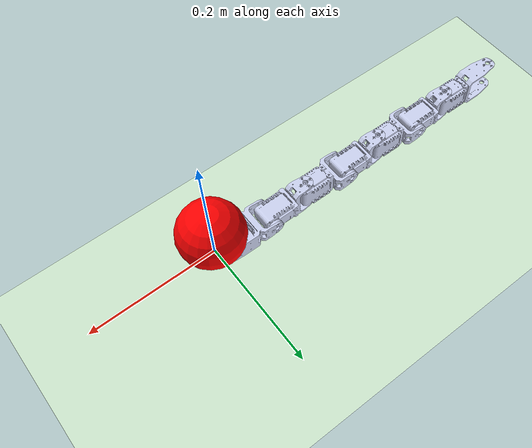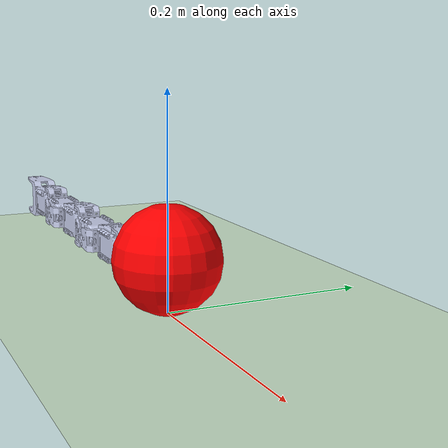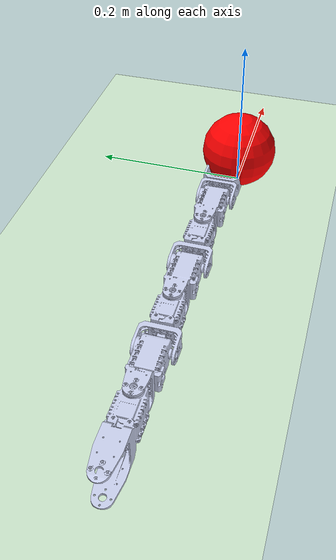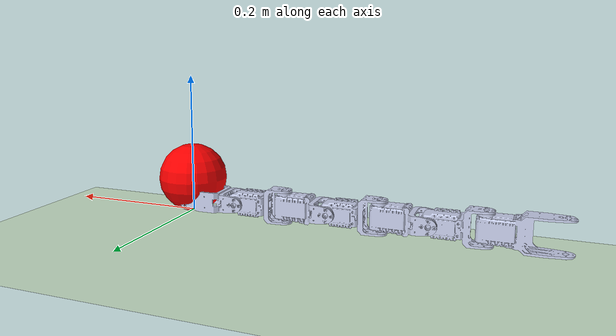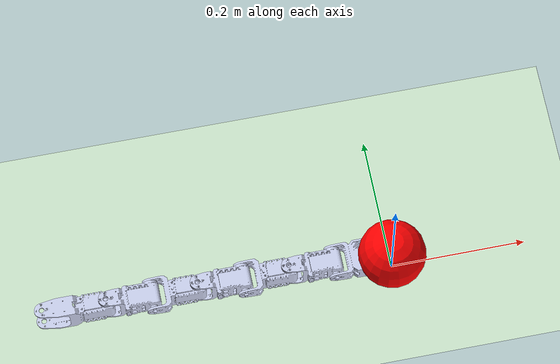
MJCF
<mujoco model="Snake_Env">
    <compiler angle="degree" coordinate="local" inertiafromgeom="true"/>

    <!-- changed timestep from 0.01 to 0.05 (0.0125*4?)   Simulation time step in seconds. 50ms = 0.05s-->

    <!--  TODO 对于 M2-Snake-Head2Tail.xml 模型，以下参数能使蛇稳定向前移动  -->
    <option integrator="Euler" timestep="0.01">
        <flag energy="enable" clampctrl="enable"/>
    </option>
    <size nconmax="1000"/>

    <default>
<!--          The kp in the defult>>position field is defined for actuator>>Position -->

        <!-- TODO 对于 M2-Snake-Head2Tail.xml 模型，sim.data.qpos[:]方式使用如下参数   -->

        <!-- TODO 对于 M2-Snake-Head2Tail.xml 模型，sim.data.ctrl[:]方式使用如下参数  -->
        <geom conaffinity="0" condim="3" friction="0.5 0.05 0.001" margin="0.01" density="600" />
        <joint armature='0.001' damping="0.01" frictionloss="0.001" />
        <position ctrllimited="true" ctrlrange="-1.5 1.5" forcelimited="true" forcerange="-20.0 20.0" kp="12" gear="1"/>
    </default>

    <asset>
        <mesh name="Head" file="Head.STL" />
        <mesh name="Module_0_fromHead" file="Module_0_fromHead.STL" />
        <mesh name="Module_1_fromHead" file="Module_1_fromHead.STL" />
        <mesh name="Module_2_fromHead" file="Module_2_fromHead.STL" />
        <mesh name="Module_3_fromHead" file="Module_3_fromHead.STL" />
        <mesh name="Module_4_fromHead" file="Module_4_fromHead.STL" />
        <mesh name="Module_5_fromHead" file="Module_5_fromHead.STL" />

        <!-- Textures for floor and Target ball-->
        <texture builtin="gradient" height="100" rgb1="1 1 1" rgb2="0 0 0" type="skybox" width="100"/>
        <texture builtin="flat" height="1278" mark="cross" markrgb="1 1 1" name="texgeom" random="0.01"
                 rgb1="0.8 0.6 0.4" rgb2="0.8 0.6 0.4" type="cube" width="127"/>
        <texture builtin="checker" height="100" name="texplane" rgb1="0 0 0" rgb2="0.8 0.8 0.8" type="2d" width="100"/>

        <material name="MatPlane" reflectance="0.5" shininess="1" specular="1" texrepeat="80 80" texture="texplane"/>
        <material name="geom" texture="texgeom" texuniform="true"/>
        <material name="MatTarget" rgba="1 0 0 1" reflectance="0.05" shininess="0.1" specular="0.1"/>
    </asset>

    <visual>
        <map znear="0.0625"  />
        <quality shadowsize="4096"/>
    </visual>

    <worldbody>
        <light cutoff="100" diffuse="1 1 1" dir="-0 0 -1.3" directional="true" exponent="1" pos="0 0 1.3"
               specular=".1 .1 .1"/>
        <geom name="floor" size="80 80 10" material="MatPlane" conaffinity="1" condim="3" pos="0 0 -0.025" rgba="0.8 0.9 0.8 0.71" type="plane"/>

        <body name="target_ball" pos="0 0 .05">
            <joint axis="1 0 0" name="target_slider_x" type="slide"/>
            <joint axis="0 1 0" name="target_slider_y" type="slide"/>
            <geom name="target_ball_geom" type="sphere" pos="0 0 0" size="0.05" material="MatTarget"/>
            <camera name="track_ball" mode="trackcom" pos="0 0 6" euler="30 0 0"/>
            <camera name="track_ball2" mode="targetbodycom" pos="0 0 1" zaxis="0 0 90" />
        </body>

        <!-- TODO 整个蛇向右，原点在Module_1_fromHead的位置，这样设计的考虑是什么？？  -->
        <body name="Snake_Env" pos="0 0 0">
            <!-- Define camera and site [Don't know why we need them]-->
            <camera name="cam_Head" pos="0 0 .025" fovy="90" euler="90 -90 0"/>
            <site name="site_Head" pos="0 0 .025" type="box"  size=".01 .01 .01" rgba="0 0 1 0.9"/>

            <!-- Simulate the firctional sliding on the floor -->
            <joint axis="1 0 0" name="slider_x" type="slide" damping="0.01" frictionloss="0.2"/>
            <joint axis="0 1 0" name="slider_y" type="slide" damping="0.01" frictionloss="0.2"/>
            <joint axis="0 1 0" name="hinge_y" type="hinge"/>
            <joint axis="0 0 1" name="hinge_z" type="hinge"/>

            <!-- M2-Snake Body -->
            <body name="M2-Head" pos="-0.13 0 0">
                <geom type="mesh" rgba="0.79216 0.81961 0.93333 1" mesh="Head" />
                <!-- Define camera and site [Don't know why we need them]-->
                <body name="Module_0_fromHead" pos="0.0465 0 0.024">
                    <inertial pos="-0.17907 0.012862 0.00033889" quat="0.268962 0.65397 0.269933 0.653543" mass="0.34605" diaginertia="0.00569944 0.00569937 7.43933e-05" />
                    <joint name="Joint_0_fromHead" pos="0 0 0" axis="0 1 0" limited="true" range="-100 100" damping="1" frictionloss="20" />
                    <geom type="mesh" rgba="0.79216 0.81961 0.93333 1" mesh="Module_0_fromHead" />
                    <body name="Module_1_fromHead" pos="-0.0675 0.0125 0">
                        <inertial pos="-0.11157 0.00036206 0.00033889" quat="0.268962 0.65397 0.269933 0.653543" mass="0.34605" diaginertia="0.00569944 0.00569937 7.43933e-05" />
                        <joint name="Joint_1_fromHead" pos="0 0 0" axis="0 0 1" limited="true" range="-100 100" damping="1" frictionloss="20" />
                        <geom type="mesh" rgba="0.79216 0.81961 0.93333 1" mesh="Module_1_fromHead" />
                        <body name="Module_2_fromHead" pos="-0.0675 0 0">
                            <inertial pos="-0.044068 0.00036206 0.00033889" quat="0.268962 0.65397 0.269933 0.653543" mass="0.34605" diaginertia="0.00569944 0.00569937 7.43933e-05" />
                            <joint name="Joint_2_fromHead" pos="0 0 0" axis="0 1 0" limited="true" range="-100 100" damping="1" frictionloss="20" />
                            <geom type="mesh" rgba="0.79216 0.81961 0.93333 1" mesh="Module_2_fromHead" />
                            <body name="Module_3_fromHead" pos="-0.0675 0 0">
                                <inertial pos="0.023432 0.00036206 0.00033889" quat="0.268962 0.65397 0.269933 0.653543" mass="0.34605" diaginertia="0.00569944 0.00569937 7.43933e-05" />
                                <joint name="Joint_3_fromHead" pos="0 0 0" axis="0 0 1" limited="true" range="-100 100" damping="1" frictionloss="20" />
                                <geom type="mesh" rgba="0.79216 0.81961 0.93333 1" mesh="Module_3_fromHead" />
                                <body name="Module_4_fromHead" pos="-0.0675 0 0">
                                    <inertial pos="0.090932 0.00036206 0.00033889" quat="0.268962 0.65397 0.269933 0.653543" mass="0.34605" diaginertia="0.00569944 0.00569937 7.43933e-05" />
                                    <joint name="Joint_4_fromHead" pos="0 0 0" axis="0 1 0" limited="true" range="-100 100" damping="1" frictionloss="20" />
                                    <geom type="mesh" rgba="0.79216 0.81961 0.93333 1" mesh="Module_4_fromHead" />
                                    <body name="Module_5_fromHead" pos="-0.0675 0 0">
                                        <inertial pos="0.15843 0.00036206 0.00033889" quat="0.268962 0.65397 0.269933 0.653543" mass="0.34605" diaginertia="0.00569944 0.00569937 7.43933e-05" />
                                        <joint name="Joint_5_fromHead" pos="0 0 0" axis="0 0 1" limited="true" range="-100 100" damping="1" frictionloss="20" />
                                        <geom type="mesh" rgba="0.79216 0.81961 0.93333 1" mesh="Module_5_fromHead" />
                                    </body>
                                </body>
                            </body>
                        </body>
                    </body>
                </body>
            </body>
        </body>
    </worldbody>

    <actuator >
        <position name="Actuator_0_fromHead" joint="Joint_0_fromHead"/>
        <position name="Actuator_1_fromHead" joint="Joint_1_fromHead"/>
        <position name="Actuator_2_fromHead" joint="Joint_2_fromHead"/>
        <position name="Actuator_3_fromHead" joint="Joint_3_fromHead"/>
        <position name="Actuator_4_fromHead" joint="Joint_4_fromHead"/>
        <position name="Actuator_5_fromHead" joint="Joint_5_fromHead"/>

    </actuator>

    <sensor>

        <actuatorfrc name="Sensor_0_fromHead" actuator="Actuator_0_fromHead" />
        <actuatorfrc name="Sensor_1_fromHead" actuator="Actuator_1_fromHead" />
        <actuatorfrc name="Sensor_2_fromHead" actuator="Actuator_2_fromHead" />
        <actuatorfrc name="Sensor_3_fromHead" actuator="Actuator_3_fromHead" />
        <actuatorfrc name="Sensor_4_fromHead" actuator="Actuator_4_fromHead" />
        <actuatorfrc name="Sensor_5_fromHead" actuator="Actuator_5_fromHead" />

        <velocimeter name="sensor_velocimeter" site="site_Head"/>
        <accelerometer name="sensor_accelerometer" site="site_Head"/>

    </sensor>
</mujoco>
